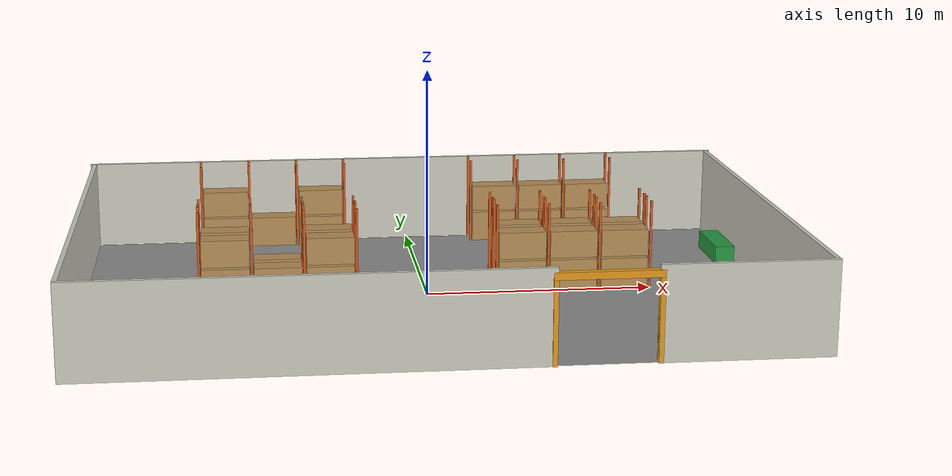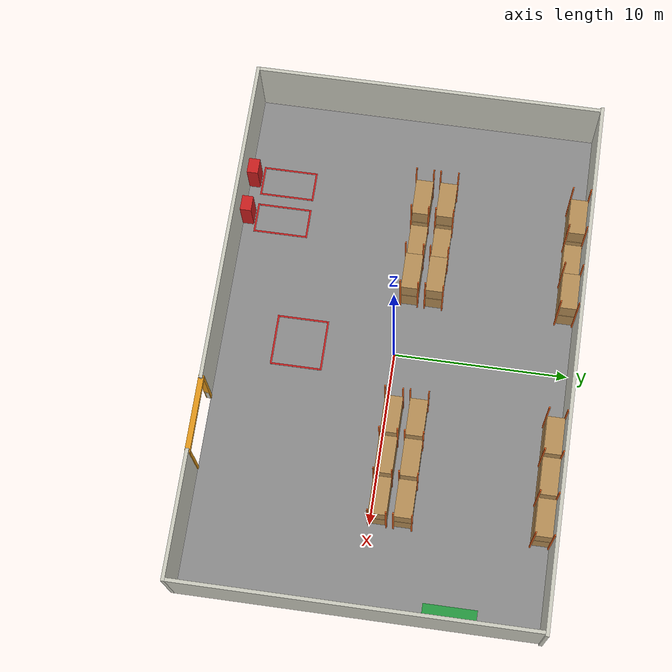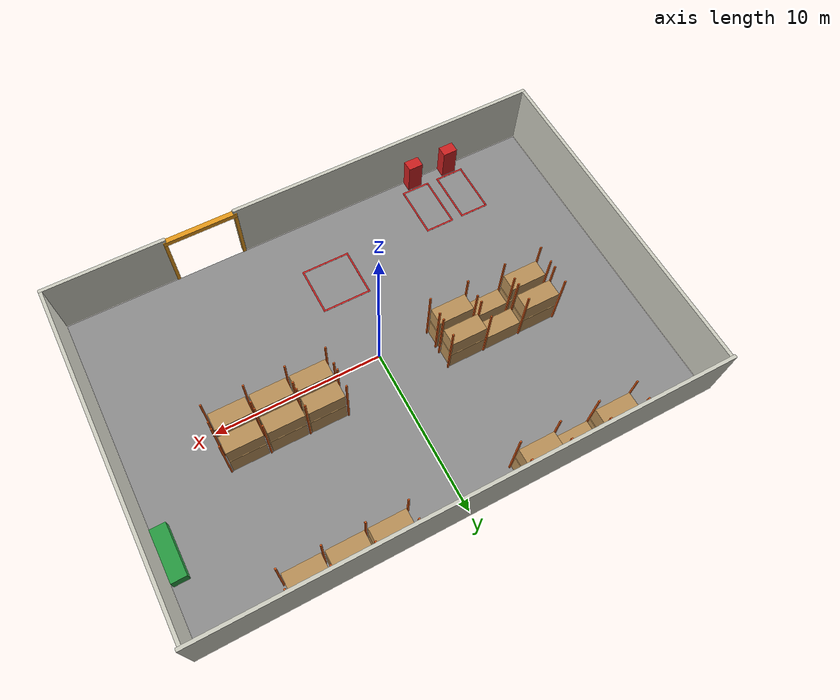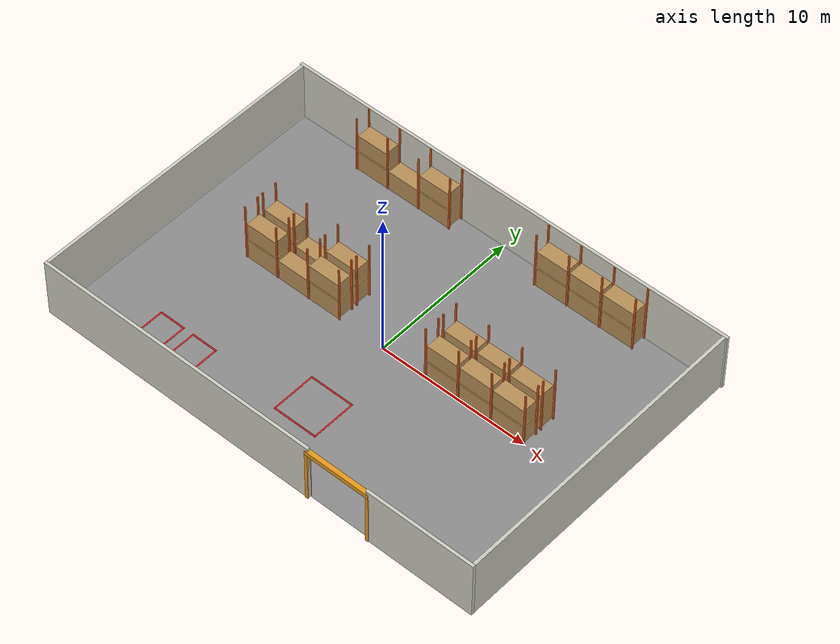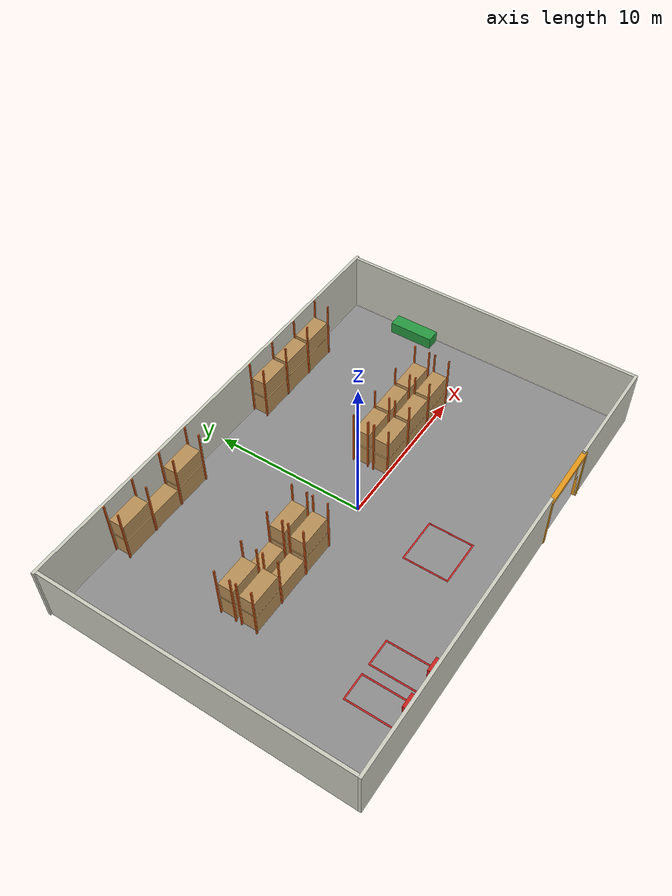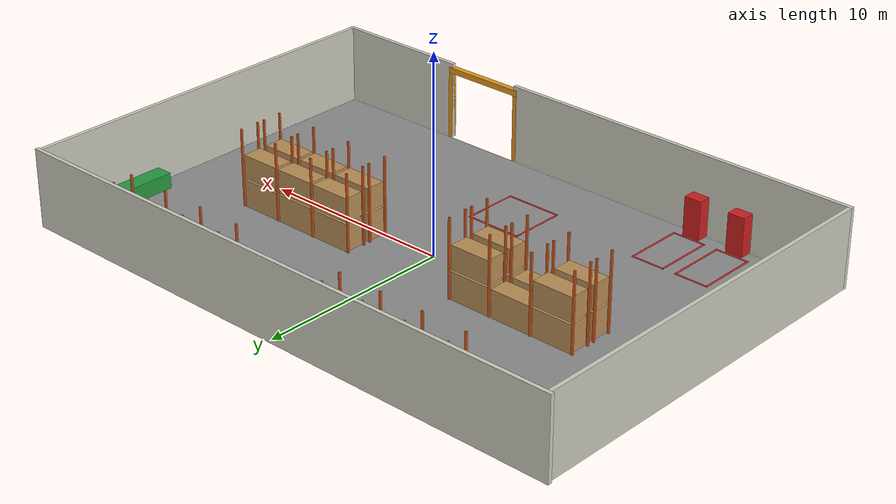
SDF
<?xml version="1.0" ?>
<sdf version="1.8">
  <world name="warehouse">

    <!-- The arena's 2 ms fixed step at 500 Hz, so joint rates measured on
         the M4 arena stay comparable here. -->
    <physics type="ode">
      <max_step_size>0.002</max_step_size>
      <real_time_factor>1.0</real_time_factor>
      <real_time_update_rate>500</real_time_update_rate>
    </physics>

    <plugin name="gz::sim::systems::Physics" filename="libgz-sim-physics-system.so"/>
    <plugin name="gz::sim::systems::UserCommands" filename="libgz-sim-user-commands-system.so"/>
    <plugin name="gz::sim::systems::SceneBroadcaster" filename="libgz-sim-scene-broadcaster-system.so"/>

    <!-- Required by the vehicle's three gpu_lidar sensors. Without this no
         scan topic is ever advertised and the failure is silent. -->
    <plugin name="gz::sim::systems::Sensors" filename="libgz-sim-sensors-system.so">
      <render_engine>ogre2</render_engine>
    </plugin>

    <!-- ======================= GUI CONFIGURATION ====================== -->
    <gui fullscreen="0">

      <plugin filename="MinimalScene" name="3D View">
        <gz-gui>
          <title>3D View</title>
          <property type="bool" key="showTitleBar">false</property>
          <property type="string" key="state">docked</property>
        </gz-gui>
        <engine>ogre2</engine>
        <scene>scene</scene>
        <ambient_light>1.0 1.0 1.0</ambient_light>
        <background_color>0.7 0.7 0.7</background_color>
        <!-- Looking north east from over the south west corner, so the
             dock apron, both charging bays and the west end of the rack
             block are in frame with no camera move. -->
        <camera_pose>-19.0 -16.0 12.0 0 0.52 0.72</camera_pose>
      </plugin>

      <plugin filename="GzSceneManager" name="Scene Manager">
        <gz-gui>
          <property key="resizable" type="bool">false</property>
          <property key="width" type="double">5</property>
          <property key="height" type="double">5</property>
          <property key="state" type="string">floating</property>
          <property key="showTitleBar" type="bool">false</property>
        </gz-gui>
      </plugin>

      <plugin filename="InteractiveViewControl" name="Interactive view control">
        <gz-gui>
          <property key="resizable" type="bool">false</property>
          <property key="width" type="double">5</property>
          <property key="height" type="double">5</property>
          <property key="state" type="string">floating</property>
          <property key="showTitleBar" type="bool">false</property>
        </gz-gui>
      </plugin>

      <plugin filename="CameraTracking" name="Camera Tracking">
        <gz-gui>
          <property key="resizable" type="bool">false</property>
          <property key="width" type="double">5</property>
          <property key="height" type="double">5</property>
          <property key="state" type="string">floating</property>
          <property key="showTitleBar" type="bool">false</property>
        </gz-gui>
      </plugin>

      <plugin filename="EntityContextMenuPlugin" name="Entity context menu">
        <gz-gui>
          <property key="state" type="string">floating</property>
          <property key="width" type="double">5</property>
          <property key="height" type="double">5</property>
          <property key="showTitleBar" type="bool">false</property>
        </gz-gui>
      </plugin>

      <plugin filename="WorldControl" name="World control">
        <gz-gui>
          <title>World control</title>
          <property type="bool" key="showTitleBar">false</property>
          <property type="bool" key="resizable">false</property>
          <property type="double" key="height">72</property>
          <property type="double" key="z">1</property>
          <property type="string" key="state">floating</property>
          <anchors target="3D View">
            <line own="left" target="left"/>
            <line own="bottom" target="bottom"/>
          </anchors>
        </gz-gui>
        <play_pause>true</play_pause>
        <step>true</step>
        <start_paused>false</start_paused>
        <use_event>true</use_event>
      </plugin>

      <!-- The real time factor readout, on screen for any recording. It is
           NOT a measurement instrument: the value it shows is gz's smoothed
           instantaneous factor. -->
      <plugin filename="WorldStats" name="World stats">
        <gz-gui>
          <title>World stats</title>
          <property type="bool" key="showTitleBar">false</property>
          <property type="bool" key="resizable">false</property>
          <property type="double" key="height">110</property>
          <property type="double" key="width">290</property>
          <property type="double" key="z">1</property>
          <property type="string" key="state">floating</property>
          <anchors target="3D View">
            <line own="right" target="right"/>
            <line own="bottom" target="bottom"/>
          </anchors>
        </gz-gui>
        <sim_time>true</sim_time>
        <real_time>true</real_time>
        <real_time_factor>true</real_time_factor>
        <iterations>true</iterations>
      </plugin>

      <!-- The beams. Docked rather than floating so the topic and display
           type combo boxes are visible without hunting: which scanner is on
           screen is not guessable from the picture. -->
      <plugin filename="VisualizeLidar" name="Visualize Lidar">
        <gz-gui>
          <title>Visualize lidar</title>
          <property type="string" key="state">docked</property>
        </gz-gui>
      </plugin>

      <plugin filename="Screenshot" name="Screenshot">
        <gz-gui>
          <property type="bool" key="showTitleBar">false</property>
          <property type="string" key="state">floating</property>
          <property type="double" key="width">100</property>
          <property type="double" key="height">50</property>
        </gz-gui>
      </plugin>

    </gui>

    <scene>
      <ambient>1 1 1 1</ambient>
      <background>0.7 0.7 0.7 1</background>
      <shadows>false</shadows>
      <grid>false</grid>
    </scene>

    <light name="sun" type="directional">
      <cast_shadows>false</cast_shadows>
      <pose>0 0 12 0 0 0</pose>
      <diffuse>1.0 1.0 1.0 1</diffuse>
      <specular>0.2 0.2 0.2 1</specular>
      <direction>-0.3 0.3 -1.0</direction>
    </light>

    <gravity>0 0 -9.8</gravity>

    <!-- ============================ Floor ============================ -->
    <!-- Plain concrete, mu 1.0 as in the arena: the tricycle has a single
         driven wheel and a slippery floor turns traction figures into tyre
         slip figures. -->
    <model name="Floor">
      <static>true</static>
      <link name="link">
        <collision name="collision">
          <geometry>
            <plane><normal>0 0 1</normal><size>30 20</size></plane>
          </geometry>
          <surface>
            <friction><ode><mu>1.0</mu><mu2>1.0</mu2></ode></friction>
          </surface>
        </collision>
        <visual name="visual">
          <geometry>
            <plane><normal>0 0 1</normal><size>30 20</size></plane>
          </geometry>
          <material>
            <ambient>0.55 0.55 0.55 1</ambient>
            <diffuse>0.55 0.55 0.55 1</diffuse>
          </material>
        </visual>
      </link>
    </model>

    <!-- ======================= Perimeter walls ======================= -->
    <!-- 0.20 thick, 4.00 high, inner faces at x = +-15.00 and
         y = +-10.00. The south wall is in two segments leaving the
         4.00 m dock door opening at x in [4.00, 8.00]. -->
    <model name="WallNorth">
      <static>true</static>
      <link name="link">
        <collision name="wallnorth_collision">
          <pose>0.000 10.100 2.000 0 0 0</pose>
          <geometry><box><size>30.600 0.200 4.000</size></box></geometry>
        </collision>
        <visual name="wallnorth_visual">
          <pose>0.000 10.100 2.000 0 0 0</pose>
          <geometry><box><size>30.600 0.200 4.000</size></box></geometry>
          <material><ambient>0.80 0.80 0.75 1</ambient><diffuse>0.80 0.80 0.75 1</diffuse></material>
        </visual>
      </link>
    </model>

    <model name="WallSouthWest">
      <static>true</static>
      <link name="link">
        <collision name="wallsouthwest_collision">
          <pose>-5.600 -10.100 2.000 0 0 0</pose>
          <geometry><box><size>19.200 0.200 4.000</size></box></geometry>
        </collision>
        <visual name="wallsouthwest_visual">
          <pose>-5.600 -10.100 2.000 0 0 0</pose>
          <geometry><box><size>19.200 0.200 4.000</size></box></geometry>
          <material><ambient>0.80 0.80 0.75 1</ambient><diffuse>0.80 0.80 0.75 1</diffuse></material>
        </visual>
      </link>
    </model>

    <model name="WallSouthEast">
      <static>true</static>
      <link name="link">
        <collision name="wallsoutheast_collision">
          <pose>11.600 -10.100 2.000 0 0 0</pose>
          <geometry><box><size>7.200 0.200 4.000</size></box></geometry>
        </collision>
        <visual name="wallsoutheast_visual">
          <pose>11.600 -10.100 2.000 0 0 0</pose>
          <geometry><box><size>7.200 0.200 4.000</size></box></geometry>
          <material><ambient>0.80 0.80 0.75 1</ambient><diffuse>0.80 0.80 0.75 1</diffuse></material>
        </visual>
      </link>
    </model>

    <model name="WallEast">
      <static>true</static>
      <link name="link">
        <collision name="walleast_collision">
          <pose>15.100 0.000 2.000 0 0 0</pose>
          <geometry><box><size>0.200 20.000 4.000</size></box></geometry>
        </collision>
        <visual name="walleast_visual">
          <pose>15.100 0.000 2.000 0 0 0</pose>
          <geometry><box><size>0.200 20.000 4.000</size></box></geometry>
          <material><ambient>0.80 0.80 0.75 1</ambient><diffuse>0.80 0.80 0.75 1</diffuse></material>
        </visual>
      </link>
    </model>

    <model name="WallWest">
      <static>true</static>
      <link name="link">
        <collision name="wallwest_collision">
          <pose>-15.100 0.000 2.000 0 0 0</pose>
          <geometry><box><size>0.200 20.000 4.000</size></box></geometry>
        </collision>
        <visual name="wallwest_visual">
          <pose>-15.100 0.000 2.000 0 0 0</pose>
          <geometry><box><size>0.200 20.000 4.000</size></box></geometry>
          <material><ambient>0.80 0.80 0.75 1</ambient><diffuse>0.80 0.80 0.75 1</diffuse></material>
        </visual>
      </link>
    </model>

    <!-- ========================= Dock door frame ====================== -->
    <model name="DoorGap">
      <static>true</static>
      <pose>6.00 -10.10 0 0 0 0</pose>
      <link name="link">
        <collision name="post_west_collision">
          <pose>-2.100 0.000 1.750 0 0 0</pose>
          <geometry><box><size>0.200 0.300 3.500</size></box></geometry>
        </collision>
        <visual name="post_west_visual">
          <pose>-2.100 0.000 1.750 0 0 0</pose>
          <geometry><box><size>0.200 0.300 3.500</size></box></geometry>
          <material><ambient>0.90 0.60 0.10 1</ambient><diffuse>0.90 0.60 0.10 1</diffuse></material>
        </visual>
        <collision name="post_east_collision">
          <pose>2.100 0.000 1.750 0 0 0</pose>
          <geometry><box><size>0.200 0.300 3.500</size></box></geometry>
        </collision>
        <visual name="post_east_visual">
          <pose>2.100 0.000 1.750 0 0 0</pose>
          <geometry><box><size>0.200 0.300 3.500</size></box></geometry>
          <material><ambient>0.90 0.60 0.10 1</ambient><diffuse>0.90 0.60 0.10 1</diffuse></material>
        </visual>
        <collision name="lintel_collision">
          <pose>0.000 0.000 3.650 0 0 0</pose>
          <geometry><box><size>4.400 0.300 0.300</size></box></geometry>
        </collision>
        <visual name="lintel_visual">
          <pose>0.000 0.000 3.650 0 0 0</pose>
          <geometry><box><size>4.400 0.300 0.300</size></box></geometry>
          <material><ambient>0.90 0.60 0.10 1</ambient><diffuse>0.90 0.60 0.10 1</diffuse></material>
        </visual>
      </link>
    </model>

    <!-- ============================ Racking =========================== -->

    <model name="RackRowA_West">
      <static>true</static>
      <link name="link">
        <!-- sub row A, front face y = +8.90, rear face y = +10.00 -->
        <collision name="a_frame0_front_collision">
          <pose>-10.000 8.940 2.000 0 0 0</pose>
          <geometry><box><size>0.100 0.080 4.000</size></box></geometry>
        </collision>
        <visual name="a_frame0_front_visual">
          <pose>-10.000 8.940 2.000 0 0 0</pose>
          <geometry><box><size>0.100 0.080 4.000</size></box></geometry>
          <material><ambient>0.85 0.35 0.10 1</ambient><diffuse>0.85 0.35 0.10 1</diffuse></material>
        </visual>
        <collision name="a_frame0_rear_collision">
          <pose>-10.000 9.960 2.000 0 0 0</pose>
          <geometry><box><size>0.100 0.080 4.000</size></box></geometry>
        </collision>
        <visual name="a_frame0_rear_visual">
          <pose>-10.000 9.960 2.000 0 0 0</pose>
          <geometry><box><size>0.100 0.080 4.000</size></box></geometry>
          <material><ambient>0.85 0.35 0.10 1</ambient><diffuse>0.85 0.35 0.10 1</diffuse></material>
        </visual>
        <collision name="a_frame1_front_collision">
          <pose>-7.700 8.940 2.000 0 0 0</pose>
          <geometry><box><size>0.100 0.080 4.000</size></box></geometry>
        </collision>
        <visual name="a_frame1_front_visual">
          <pose>-7.700 8.940 2.000 0 0 0</pose>
          <geometry><box><size>0.100 0.080 4.000</size></box></geometry>
          <material><ambient>0.85 0.35 0.10 1</ambient><diffuse>0.85 0.35 0.10 1</diffuse></material>
        </visual>
        <collision name="a_frame1_rear_collision">
          <pose>-7.700 9.960 2.000 0 0 0</pose>
          <geometry><box><size>0.100 0.080 4.000</size></box></geometry>
        </collision>
        <visual name="a_frame1_rear_visual">
          <pose>-7.700 9.960 2.000 0 0 0</pose>
          <geometry><box><size>0.100 0.080 4.000</size></box></geometry>
          <material><ambient>0.85 0.35 0.10 1</ambient><diffuse>0.85 0.35 0.10 1</diffuse></material>
        </visual>
        <collision name="a_frame2_front_collision">
          <pose>-5.400 8.940 2.000 0 0 0</pose>
          <geometry><box><size>0.100 0.080 4.000</size></box></geometry>
        </collision>
        <visual name="a_frame2_front_visual">
          <pose>-5.400 8.940 2.000 0 0 0</pose>
          <geometry><box><size>0.100 0.080 4.000</size></box></geometry>
          <material><ambient>0.85 0.35 0.10 1</ambient><diffuse>0.85 0.35 0.10 1</diffuse></material>
        </visual>
        <collision name="a_frame2_rear_collision">
          <pose>-5.400 9.960 2.000 0 0 0</pose>
          <geometry><box><size>0.100 0.080 4.000</size></box></geometry>
        </collision>
        <visual name="a_frame2_rear_visual">
          <pose>-5.400 9.960 2.000 0 0 0</pose>
          <geometry><box><size>0.100 0.080 4.000</size></box></geometry>
          <material><ambient>0.85 0.35 0.10 1</ambient><diffuse>0.85 0.35 0.10 1</diffuse></material>
        </visual>
        <collision name="a_frame3_front_collision">
          <pose>-3.100 8.940 2.000 0 0 0</pose>
          <geometry><box><size>0.100 0.080 4.000</size></box></geometry>
        </collision>
        <visual name="a_frame3_front_visual">
          <pose>-3.100 8.940 2.000 0 0 0</pose>
          <geometry><box><size>0.100 0.080 4.000</size></box></geometry>
          <material><ambient>0.85 0.35 0.10 1</ambient><diffuse>0.85 0.35 0.10 1</diffuse></material>
        </visual>
        <collision name="a_frame3_rear_collision">
          <pose>-3.100 9.960 2.000 0 0 0</pose>
          <geometry><box><size>0.100 0.080 4.000</size></box></geometry>
        </collision>
        <visual name="a_frame3_rear_visual">
          <pose>-3.100 9.960 2.000 0 0 0</pose>
          <geometry><box><size>0.100 0.080 4.000</size></box></geometry>
          <material><ambient>0.85 0.35 0.10 1</ambient><diffuse>0.85 0.35 0.10 1</diffuse></material>
        </visual>
        <collision name="a_bay0_level1_collision">
          <pose>-8.850 9.450 0.700 0 0 0</pose>
          <geometry><box><size>2.100 1.000 1.400</size></box></geometry>
        </collision>
        <visual name="a_bay0_level1_visual">
          <pose>-8.850 9.450 0.700 0 0 0</pose>
          <geometry><box><size>2.100 1.000 1.400</size></box></geometry>
          <material><ambient>0.72 0.56 0.34 1</ambient><diffuse>0.72 0.56 0.34 1</diffuse></material>
        </visual>
        <collision name="a_bay0_level2_collision">
          <pose>-8.850 9.450 2.100 0 0 0</pose>
          <geometry><box><size>2.100 1.000 1.200</size></box></geometry>
        </collision>
        <visual name="a_bay0_level2_visual">
          <pose>-8.850 9.450 2.100 0 0 0</pose>
          <geometry><box><size>2.100 1.000 1.200</size></box></geometry>
          <material><ambient>0.72 0.56 0.34 1</ambient><diffuse>0.72 0.56 0.34 1</diffuse></material>
        </visual>
        <collision name="a_bay1_level1_collision">
          <pose>-6.550 9.450 0.700 0 0 0</pose>
          <geometry><box><size>2.100 1.000 1.400</size></box></geometry>
        </collision>
        <visual name="a_bay1_level1_visual">
          <pose>-6.550 9.450 0.700 0 0 0</pose>
          <geometry><box><size>2.100 1.000 1.400</size></box></geometry>
          <material><ambient>0.72 0.56 0.34 1</ambient><diffuse>0.72 0.56 0.34 1</diffuse></material>
        </visual>
        <collision name="a_bay2_level1_collision">
          <pose>-4.250 9.450 0.700 0 0 0</pose>
          <geometry><box><size>2.100 1.000 1.400</size></box></geometry>
        </collision>
        <visual name="a_bay2_level1_visual">
          <pose>-4.250 9.450 0.700 0 0 0</pose>
          <geometry><box><size>2.100 1.000 1.400</size></box></geometry>
          <material><ambient>0.72 0.56 0.34 1</ambient><diffuse>0.72 0.56 0.34 1</diffuse></material>
        </visual>
        <collision name="a_bay2_level2_collision">
          <pose>-4.250 9.450 2.100 0 0 0</pose>
          <geometry><box><size>2.100 1.000 1.200</size></box></geometry>
        </collision>
        <visual name="a_bay2_level2_visual">
          <pose>-4.250 9.450 2.100 0 0 0</pose>
          <geometry><box><size>2.100 1.000 1.200</size></box></geometry>
          <material><ambient>0.72 0.56 0.34 1</ambient><diffuse>0.72 0.56 0.34 1</diffuse></material>
        </visual>
      </link>
    </model>

    <model name="RackRowA_East">
      <static>true</static>
      <link name="link">
        <!-- sub row A, front face y = +8.90, rear face y = +10.00 -->
        <collision name="a_frame0_front_collision">
          <pose>3.100 8.940 2.000 0 0 0</pose>
          <geometry><box><size>0.100 0.080 4.000</size></box></geometry>
        </collision>
        <visual name="a_frame0_front_visual">
          <pose>3.100 8.940 2.000 0 0 0</pose>
          <geometry><box><size>0.100 0.080 4.000</size></box></geometry>
          <material><ambient>0.85 0.35 0.10 1</ambient><diffuse>0.85 0.35 0.10 1</diffuse></material>
        </visual>
        <collision name="a_frame0_rear_collision">
          <pose>3.100 9.960 2.000 0 0 0</pose>
          <geometry><box><size>0.100 0.080 4.000</size></box></geometry>
        </collision>
        <visual name="a_frame0_rear_visual">
          <pose>3.100 9.960 2.000 0 0 0</pose>
          <geometry><box><size>0.100 0.080 4.000</size></box></geometry>
          <material><ambient>0.85 0.35 0.10 1</ambient><diffuse>0.85 0.35 0.10 1</diffuse></material>
        </visual>
        <collision name="a_frame1_front_collision">
          <pose>5.400 8.940 2.000 0 0 0</pose>
          <geometry><box><size>0.100 0.080 4.000</size></box></geometry>
        </collision>
        <visual name="a_frame1_front_visual">
          <pose>5.400 8.940 2.000 0 0 0</pose>
          <geometry><box><size>0.100 0.080 4.000</size></box></geometry>
          <material><ambient>0.85 0.35 0.10 1</ambient><diffuse>0.85 0.35 0.10 1</diffuse></material>
        </visual>
        <collision name="a_frame1_rear_collision">
          <pose>5.400 9.960 2.000 0 0 0</pose>
          <geometry><box><size>0.100 0.080 4.000</size></box></geometry>
        </collision>
        <visual name="a_frame1_rear_visual">
          <pose>5.400 9.960 2.000 0 0 0</pose>
          <geometry><box><size>0.100 0.080 4.000</size></box></geometry>
          <material><ambient>0.85 0.35 0.10 1</ambient><diffuse>0.85 0.35 0.10 1</diffuse></material>
        </visual>
        <collision name="a_frame2_front_collision">
          <pose>7.700 8.940 2.000 0 0 0</pose>
          <geometry><box><size>0.100 0.080 4.000</size></box></geometry>
        </collision>
        <visual name="a_frame2_front_visual">
          <pose>7.700 8.940 2.000 0 0 0</pose>
          <geometry><box><size>0.100 0.080 4.000</size></box></geometry>
          <material><ambient>0.85 0.35 0.10 1</ambient><diffuse>0.85 0.35 0.10 1</diffuse></material>
        </visual>
        <collision name="a_frame2_rear_collision">
          <pose>7.700 9.960 2.000 0 0 0</pose>
          <geometry><box><size>0.100 0.080 4.000</size></box></geometry>
        </collision>
        <visual name="a_frame2_rear_visual">
          <pose>7.700 9.960 2.000 0 0 0</pose>
          <geometry><box><size>0.100 0.080 4.000</size></box></geometry>
          <material><ambient>0.85 0.35 0.10 1</ambient><diffuse>0.85 0.35 0.10 1</diffuse></material>
        </visual>
        <collision name="a_frame3_front_collision">
          <pose>10.000 8.940 2.000 0 0 0</pose>
          <geometry><box><size>0.100 0.080 4.000</size></box></geometry>
        </collision>
        <visual name="a_frame3_front_visual">
          <pose>10.000 8.940 2.000 0 0 0</pose>
          <geometry><box><size>0.100 0.080 4.000</size></box></geometry>
          <material><ambient>0.85 0.35 0.10 1</ambient><diffuse>0.85 0.35 0.10 1</diffuse></material>
        </visual>
        <collision name="a_frame3_rear_collision">
          <pose>10.000 9.960 2.000 0 0 0</pose>
          <geometry><box><size>0.100 0.080 4.000</size></box></geometry>
        </collision>
        <visual name="a_frame3_rear_visual">
          <pose>10.000 9.960 2.000 0 0 0</pose>
          <geometry><box><size>0.100 0.080 4.000</size></box></geometry>
          <material><ambient>0.85 0.35 0.10 1</ambient><diffuse>0.85 0.35 0.10 1</diffuse></material>
        </visual>
        <collision name="a_bay0_level1_collision">
          <pose>4.250 9.450 0.700 0 0 0</pose>
          <geometry><box><size>2.100 1.000 1.400</size></box></geometry>
        </collision>
        <visual name="a_bay0_level1_visual">
          <pose>4.250 9.450 0.700 0 0 0</pose>
          <geometry><box><size>2.100 1.000 1.400</size></box></geometry>
          <material><ambient>0.72 0.56 0.34 1</ambient><diffuse>0.72 0.56 0.34 1</diffuse></material>
        </visual>
        <collision name="a_bay0_level2_collision">
          <pose>4.250 9.450 2.100 0 0 0</pose>
          <geometry><box><size>2.100 1.000 1.200</size></box></geometry>
        </collision>
        <visual name="a_bay0_level2_visual">
          <pose>4.250 9.450 2.100 0 0 0</pose>
          <geometry><box><size>2.100 1.000 1.200</size></box></geometry>
          <material><ambient>0.72 0.56 0.34 1</ambient><diffuse>0.72 0.56 0.34 1</diffuse></material>
        </visual>
        <collision name="a_bay1_level1_collision">
          <pose>6.550 9.450 0.700 0 0 0</pose>
          <geometry><box><size>2.100 1.000 1.400</size></box></geometry>
        </collision>
        <visual name="a_bay1_level1_visual">
          <pose>6.550 9.450 0.700 0 0 0</pose>
          <geometry><box><size>2.100 1.000 1.400</size></box></geometry>
          <material><ambient>0.72 0.56 0.34 1</ambient><diffuse>0.72 0.56 0.34 1</diffuse></material>
        </visual>
        <collision name="a_bay1_level2_collision">
          <pose>6.550 9.450 2.100 0 0 0</pose>
          <geometry><box><size>2.100 1.000 1.200</size></box></geometry>
        </collision>
        <visual name="a_bay1_level2_visual">
          <pose>6.550 9.450 2.100 0 0 0</pose>
          <geometry><box><size>2.100 1.000 1.200</size></box></geometry>
          <material><ambient>0.72 0.56 0.34 1</ambient><diffuse>0.72 0.56 0.34 1</diffuse></material>
        </visual>
        <collision name="a_bay2_level1_collision">
          <pose>8.850 9.450 0.700 0 0 0</pose>
          <geometry><box><size>2.100 1.000 1.400</size></box></geometry>
        </collision>
        <visual name="a_bay2_level1_visual">
          <pose>8.850 9.450 0.700 0 0 0</pose>
          <geometry><box><size>2.100 1.000 1.400</size></box></geometry>
          <material><ambient>0.72 0.56 0.34 1</ambient><diffuse>0.72 0.56 0.34 1</diffuse></material>
        </visual>
        <collision name="a_bay2_level2_collision">
          <pose>8.850 9.450 2.100 0 0 0</pose>
          <geometry><box><size>2.100 1.000 1.200</size></box></geometry>
        </collision>
        <visual name="a_bay2_level2_visual">
          <pose>8.850 9.450 2.100 0 0 0</pose>
          <geometry><box><size>2.100 1.000 1.200</size></box></geometry>
          <material><ambient>0.72 0.56 0.34 1</ambient><diffuse>0.72 0.56 0.34 1</diffuse></material>
        </visual>
      </link>
    </model>

    <model name="RackRowB_West">
      <static>true</static>
      <link name="link">
        <!-- sub rows Bn/Bs: faces y = +2.40/+1.30 and y = +1.00/-0.10 -->
        <collision name="bn_frame0_front_collision">
          <pose>-10.000 2.360 2.000 0 0 0</pose>
          <geometry><box><size>0.100 0.080 4.000</size></box></geometry>
        </collision>
        <visual name="bn_frame0_front_visual">
          <pose>-10.000 2.360 2.000 0 0 0</pose>
          <geometry><box><size>0.100 0.080 4.000</size></box></geometry>
          <material><ambient>0.85 0.35 0.10 1</ambient><diffuse>0.85 0.35 0.10 1</diffuse></material>
        </visual>
        <collision name="bn_frame0_rear_collision">
          <pose>-10.000 1.340 2.000 0 0 0</pose>
          <geometry><box><size>0.100 0.080 4.000</size></box></geometry>
        </collision>
        <visual name="bn_frame0_rear_visual">
          <pose>-10.000 1.340 2.000 0 0 0</pose>
          <geometry><box><size>0.100 0.080 4.000</size></box></geometry>
          <material><ambient>0.85 0.35 0.10 1</ambient><diffuse>0.85 0.35 0.10 1</diffuse></material>
        </visual>
        <collision name="bn_frame1_front_collision">
          <pose>-7.700 2.360 2.000 0 0 0</pose>
          <geometry><box><size>0.100 0.080 4.000</size></box></geometry>
        </collision>
        <visual name="bn_frame1_front_visual">
          <pose>-7.700 2.360 2.000 0 0 0</pose>
          <geometry><box><size>0.100 0.080 4.000</size></box></geometry>
          <material><ambient>0.85 0.35 0.10 1</ambient><diffuse>0.85 0.35 0.10 1</diffuse></material>
        </visual>
        <collision name="bn_frame1_rear_collision">
          <pose>-7.700 1.340 2.000 0 0 0</pose>
          <geometry><box><size>0.100 0.080 4.000</size></box></geometry>
        </collision>
        <visual name="bn_frame1_rear_visual">
          <pose>-7.700 1.340 2.000 0 0 0</pose>
          <geometry><box><size>0.100 0.080 4.000</size></box></geometry>
          <material><ambient>0.85 0.35 0.10 1</ambient><diffuse>0.85 0.35 0.10 1</diffuse></material>
        </visual>
        <collision name="bn_frame2_front_collision">
          <pose>-5.400 2.360 2.000 0 0 0</pose>
          <geometry><box><size>0.100 0.080 4.000</size></box></geometry>
        </collision>
        <visual name="bn_frame2_front_visual">
          <pose>-5.400 2.360 2.000 0 0 0</pose>
          <geometry><box><size>0.100 0.080 4.000</size></box></geometry>
          <material><ambient>0.85 0.35 0.10 1</ambient><diffuse>0.85 0.35 0.10 1</diffuse></material>
        </visual>
        <collision name="bn_frame2_rear_collision">
          <pose>-5.400 1.340 2.000 0 0 0</pose>
          <geometry><box><size>0.100 0.080 4.000</size></box></geometry>
        </collision>
        <visual name="bn_frame2_rear_visual">
          <pose>-5.400 1.340 2.000 0 0 0</pose>
          <geometry><box><size>0.100 0.080 4.000</size></box></geometry>
          <material><ambient>0.85 0.35 0.10 1</ambient><diffuse>0.85 0.35 0.10 1</diffuse></material>
        </visual>
        <collision name="bn_frame3_front_collision">
          <pose>-3.100 2.360 2.000 0 0 0</pose>
          <geometry><box><size>0.100 0.080 4.000</size></box></geometry>
        </collision>
        <visual name="bn_frame3_front_visual">
          <pose>-3.100 2.360 2.000 0 0 0</pose>
          <geometry><box><size>0.100 0.080 4.000</size></box></geometry>
          <material><ambient>0.85 0.35 0.10 1</ambient><diffuse>0.85 0.35 0.10 1</diffuse></material>
        </visual>
        <collision name="bn_frame3_rear_collision">
          <pose>-3.100 1.340 2.000 0 0 0</pose>
          <geometry><box><size>0.100 0.080 4.000</size></box></geometry>
        </collision>
        <visual name="bn_frame3_rear_visual">
          <pose>-3.100 1.340 2.000 0 0 0</pose>
          <geometry><box><size>0.100 0.080 4.000</size></box></geometry>
          <material><ambient>0.85 0.35 0.10 1</ambient><diffuse>0.85 0.35 0.10 1</diffuse></material>
        </visual>
        <collision name="bn_bay0_level1_collision">
          <pose>-8.850 1.850 0.700 0 0 0</pose>
          <geometry><box><size>2.100 1.000 1.400</size></box></geometry>
        </collision>
        <visual name="bn_bay0_level1_visual">
          <pose>-8.850 1.850 0.700 0 0 0</pose>
          <geometry><box><size>2.100 1.000 1.400</size></box></geometry>
          <material><ambient>0.72 0.56 0.34 1</ambient><diffuse>0.72 0.56 0.34 1</diffuse></material>
        </visual>
        <collision name="bn_bay0_level2_collision">
          <pose>-8.850 1.850 2.100 0 0 0</pose>
          <geometry><box><size>2.100 1.000 1.200</size></box></geometry>
        </collision>
        <visual name="bn_bay0_level2_visual">
          <pose>-8.850 1.850 2.100 0 0 0</pose>
          <geometry><box><size>2.100 1.000 1.200</size></box></geometry>
          <material><ambient>0.72 0.56 0.34 1</ambient><diffuse>0.72 0.56 0.34 1</diffuse></material>
        </visual>
        <collision name="bn_bay1_level1_collision">
          <pose>-6.550 1.850 0.700 0 0 0</pose>
          <geometry><box><size>2.100 1.000 1.400</size></box></geometry>
        </collision>
        <visual name="bn_bay1_level1_visual">
          <pose>-6.550 1.850 0.700 0 0 0</pose>
          <geometry><box><size>2.100 1.000 1.400</size></box></geometry>
          <material><ambient>0.72 0.56 0.34 1</ambient><diffuse>0.72 0.56 0.34 1</diffuse></material>
        </visual>
        <collision name="bn_bay2_level1_collision">
          <pose>-4.250 1.850 0.700 0 0 0</pose>
          <geometry><box><size>2.100 1.000 1.400</size></box></geometry>
        </collision>
        <visual name="bn_bay2_level1_visual">
          <pose>-4.250 1.850 0.700 0 0 0</pose>
          <geometry><box><size>2.100 1.000 1.400</size></box></geometry>
          <material><ambient>0.72 0.56 0.34 1</ambient><diffuse>0.72 0.56 0.34 1</diffuse></material>
        </visual>
        <collision name="bn_bay2_level2_collision">
          <pose>-4.250 1.850 2.100 0 0 0</pose>
          <geometry><box><size>2.100 1.000 1.200</size></box></geometry>
        </collision>
        <visual name="bn_bay2_level2_visual">
          <pose>-4.250 1.850 2.100 0 0 0</pose>
          <geometry><box><size>2.100 1.000 1.200</size></box></geometry>
          <material><ambient>0.72 0.56 0.34 1</ambient><diffuse>0.72 0.56 0.34 1</diffuse></material>
        </visual>
        <collision name="bs_frame0_front_collision">
          <pose>-10.000 -0.060 2.000 0 0 0</pose>
          <geometry><box><size>0.100 0.080 4.000</size></box></geometry>
        </collision>
        <visual name="bs_frame0_front_visual">
          <pose>-10.000 -0.060 2.000 0 0 0</pose>
          <geometry><box><size>0.100 0.080 4.000</size></box></geometry>
          <material><ambient>0.85 0.35 0.10 1</ambient><diffuse>0.85 0.35 0.10 1</diffuse></material>
        </visual>
        <collision name="bs_frame0_rear_collision">
          <pose>-10.000 0.940 2.000 0 0 0</pose>
          <geometry><box><size>0.100 0.080 4.000</size></box></geometry>
        </collision>
        <visual name="bs_frame0_rear_visual">
          <pose>-10.000 0.940 2.000 0 0 0</pose>
          <geometry><box><size>0.100 0.080 4.000</size></box></geometry>
          <material><ambient>0.85 0.35 0.10 1</ambient><diffuse>0.85 0.35 0.10 1</diffuse></material>
        </visual>
        <collision name="bs_frame1_front_collision">
          <pose>-7.700 -0.060 2.000 0 0 0</pose>
          <geometry><box><size>0.100 0.080 4.000</size></box></geometry>
        </collision>
        <visual name="bs_frame1_front_visual">
          <pose>-7.700 -0.060 2.000 0 0 0</pose>
          <geometry><box><size>0.100 0.080 4.000</size></box></geometry>
          <material><ambient>0.85 0.35 0.10 1</ambient><diffuse>0.85 0.35 0.10 1</diffuse></material>
        </visual>
        <collision name="bs_frame1_rear_collision">
          <pose>-7.700 0.940 2.000 0 0 0</pose>
          <geometry><box><size>0.100 0.080 4.000</size></box></geometry>
        </collision>
        <visual name="bs_frame1_rear_visual">
          <pose>-7.700 0.940 2.000 0 0 0</pose>
          <geometry><box><size>0.100 0.080 4.000</size></box></geometry>
          <material><ambient>0.85 0.35 0.10 1</ambient><diffuse>0.85 0.35 0.10 1</diffuse></material>
        </visual>
        <collision name="bs_frame2_front_collision">
          <pose>-5.400 -0.060 2.000 0 0 0</pose>
          <geometry><box><size>0.100 0.080 4.000</size></box></geometry>
        </collision>
        <visual name="bs_frame2_front_visual">
          <pose>-5.400 -0.060 2.000 0 0 0</pose>
          <geometry><box><size>0.100 0.080 4.000</size></box></geometry>
          <material><ambient>0.85 0.35 0.10 1</ambient><diffuse>0.85 0.35 0.10 1</diffuse></material>
        </visual>
        <collision name="bs_frame2_rear_collision">
          <pose>-5.400 0.940 2.000 0 0 0</pose>
          <geometry><box><size>0.100 0.080 4.000</size></box></geometry>
        </collision>
        <visual name="bs_frame2_rear_visual">
          <pose>-5.400 0.940 2.000 0 0 0</pose>
          <geometry><box><size>0.100 0.080 4.000</size></box></geometry>
          <material><ambient>0.85 0.35 0.10 1</ambient><diffuse>0.85 0.35 0.10 1</diffuse></material>
        </visual>
        <collision name="bs_frame3_front_collision">
          <pose>-3.100 -0.060 2.000 0 0 0</pose>
          <geometry><box><size>0.100 0.080 4.000</size></box></geometry>
        </collision>
        <visual name="bs_frame3_front_visual">
          <pose>-3.100 -0.060 2.000 0 0 0</pose>
          <geometry><box><size>0.100 0.080 4.000</size></box></geometry>
          <material><ambient>0.85 0.35 0.10 1</ambient><diffuse>0.85 0.35 0.10 1</diffuse></material>
        </visual>
        <collision name="bs_frame3_rear_collision">
          <pose>-3.100 0.940 2.000 0 0 0</pose>
          <geometry><box><size>0.100 0.080 4.000</size></box></geometry>
        </collision>
        <visual name="bs_frame3_rear_visual">
          <pose>-3.100 0.940 2.000 0 0 0</pose>
          <geometry><box><size>0.100 0.080 4.000</size></box></geometry>
          <material><ambient>0.85 0.35 0.10 1</ambient><diffuse>0.85 0.35 0.10 1</diffuse></material>
        </visual>
        <collision name="bs_bay0_level1_collision">
          <pose>-8.850 0.450 0.700 0 0 0</pose>
          <geometry><box><size>2.100 1.000 1.400</size></box></geometry>
        </collision>
        <visual name="bs_bay0_level1_visual">
          <pose>-8.850 0.450 0.700 0 0 0</pose>
          <geometry><box><size>2.100 1.000 1.400</size></box></geometry>
          <material><ambient>0.72 0.56 0.34 1</ambient><diffuse>0.72 0.56 0.34 1</diffuse></material>
        </visual>
        <collision name="bs_bay0_level2_collision">
          <pose>-8.850 0.450 2.100 0 0 0</pose>
          <geometry><box><size>2.100 1.000 1.200</size></box></geometry>
        </collision>
        <visual name="bs_bay0_level2_visual">
          <pose>-8.850 0.450 2.100 0 0 0</pose>
          <geometry><box><size>2.100 1.000 1.200</size></box></geometry>
          <material><ambient>0.72 0.56 0.34 1</ambient><diffuse>0.72 0.56 0.34 1</diffuse></material>
        </visual>
        <collision name="bs_bay1_level1_collision">
          <pose>-6.550 0.450 0.700 0 0 0</pose>
          <geometry><box><size>2.100 1.000 1.400</size></box></geometry>
        </collision>
        <visual name="bs_bay1_level1_visual">
          <pose>-6.550 0.450 0.700 0 0 0</pose>
          <geometry><box><size>2.100 1.000 1.400</size></box></geometry>
          <material><ambient>0.72 0.56 0.34 1</ambient><diffuse>0.72 0.56 0.34 1</diffuse></material>
        </visual>
        <collision name="bs_bay2_level1_collision">
          <pose>-4.250 0.450 0.700 0 0 0</pose>
          <geometry><box><size>2.100 1.000 1.400</size></box></geometry>
        </collision>
        <visual name="bs_bay2_level1_visual">
          <pose>-4.250 0.450 0.700 0 0 0</pose>
          <geometry><box><size>2.100 1.000 1.400</size></box></geometry>
          <material><ambient>0.72 0.56 0.34 1</ambient><diffuse>0.72 0.56 0.34 1</diffuse></material>
        </visual>
        <collision name="bs_bay2_level2_collision">
          <pose>-4.250 0.450 2.100 0 0 0</pose>
          <geometry><box><size>2.100 1.000 1.200</size></box></geometry>
        </collision>
        <visual name="bs_bay2_level2_visual">
          <pose>-4.250 0.450 2.100 0 0 0</pose>
          <geometry><box><size>2.100 1.000 1.200</size></box></geometry>
          <material><ambient>0.72 0.56 0.34 1</ambient><diffuse>0.72 0.56 0.34 1</diffuse></material>
        </visual>
      </link>
    </model>

    <model name="RackRowB_East">
      <static>true</static>
      <link name="link">
        <!-- sub rows Bn/Bs: faces y = +2.40/+1.30 and y = +1.00/-0.10 -->
        <collision name="bn_frame0_front_collision">
          <pose>3.100 2.360 2.000 0 0 0</pose>
          <geometry><box><size>0.100 0.080 4.000</size></box></geometry>
        </collision>
        <visual name="bn_frame0_front_visual">
          <pose>3.100 2.360 2.000 0 0 0</pose>
          <geometry><box><size>0.100 0.080 4.000</size></box></geometry>
          <material><ambient>0.85 0.35 0.10 1</ambient><diffuse>0.85 0.35 0.10 1</diffuse></material>
        </visual>
        <collision name="bn_frame0_rear_collision">
          <pose>3.100 1.340 2.000 0 0 0</pose>
          <geometry><box><size>0.100 0.080 4.000</size></box></geometry>
        </collision>
        <visual name="bn_frame0_rear_visual">
          <pose>3.100 1.340 2.000 0 0 0</pose>
          <geometry><box><size>0.100 0.080 4.000</size></box></geometry>
          <material><ambient>0.85 0.35 0.10 1</ambient><diffuse>0.85 0.35 0.10 1</diffuse></material>
        </visual>
        <collision name="bn_frame1_front_collision">
          <pose>5.400 2.360 2.000 0 0 0</pose>
          <geometry><box><size>0.100 0.080 4.000</size></box></geometry>
        </collision>
        <visual name="bn_frame1_front_visual">
          <pose>5.400 2.360 2.000 0 0 0</pose>
          <geometry><box><size>0.100 0.080 4.000</size></box></geometry>
          <material><ambient>0.85 0.35 0.10 1</ambient><diffuse>0.85 0.35 0.10 1</diffuse></material>
        </visual>
        <collision name="bn_frame1_rear_collision">
          <pose>5.400 1.340 2.000 0 0 0</pose>
          <geometry><box><size>0.100 0.080 4.000</size></box></geometry>
        </collision>
        <visual name="bn_frame1_rear_visual">
          <pose>5.400 1.340 2.000 0 0 0</pose>
          <geometry><box><size>0.100 0.080 4.000</size></box></geometry>
          <material><ambient>0.85 0.35 0.10 1</ambient><diffuse>0.85 0.35 0.10 1</diffuse></material>
        </visual>
        <collision name="bn_frame2_front_collision">
          <pose>7.700 2.360 2.000 0 0 0</pose>
          <geometry><box><size>0.100 0.080 4.000</size></box></geometry>
        </collision>
        <visual name="bn_frame2_front_visual">
          <pose>7.700 2.360 2.000 0 0 0</pose>
          <geometry><box><size>0.100 0.080 4.000</size></box></geometry>
          <material><ambient>0.85 0.35 0.10 1</ambient><diffuse>0.85 0.35 0.10 1</diffuse></material>
        </visual>
        <collision name="bn_frame2_rear_collision">
          <pose>7.700 1.340 2.000 0 0 0</pose>
          <geometry><box><size>0.100 0.080 4.000</size></box></geometry>
        </collision>
        <visual name="bn_frame2_rear_visual">
          <pose>7.700 1.340 2.000 0 0 0</pose>
          <geometry><box><size>0.100 0.080 4.000</size></box></geometry>
          <material><ambient>0.85 0.35 0.10 1</ambient><diffuse>0.85 0.35 0.10 1</diffuse></material>
        </visual>
        <collision name="bn_frame3_front_collision">
          <pose>10.000 2.360 2.000 0 0 0</pose>
          <geometry><box><size>0.100 0.080 4.000</size></box></geometry>
        </collision>
        <visual name="bn_frame3_front_visual">
          <pose>10.000 2.360 2.000 0 0 0</pose>
          <geometry><box><size>0.100 0.080 4.000</size></box></geometry>
          <material><ambient>0.85 0.35 0.10 1</ambient><diffuse>0.85 0.35 0.10 1</diffuse></material>
        </visual>
        <collision name="bn_frame3_rear_collision">
          <pose>10.000 1.340 2.000 0 0 0</pose>
          <geometry><box><size>0.100 0.080 4.000</size></box></geometry>
        </collision>
        <visual name="bn_frame3_rear_visual">
          <pose>10.000 1.340 2.000 0 0 0</pose>
          <geometry><box><size>0.100 0.080 4.000</size></box></geometry>
          <material><ambient>0.85 0.35 0.10 1</ambient><diffuse>0.85 0.35 0.10 1</diffuse></material>
        </visual>
        <collision name="bn_bay0_level1_collision">
          <pose>4.250 1.850 0.700 0 0 0</pose>
          <geometry><box><size>2.100 1.000 1.400</size></box></geometry>
        </collision>
        <visual name="bn_bay0_level1_visual">
          <pose>4.250 1.850 0.700 0 0 0</pose>
          <geometry><box><size>2.100 1.000 1.400</size></box></geometry>
          <material><ambient>0.72 0.56 0.34 1</ambient><diffuse>0.72 0.56 0.34 1</diffuse></material>
        </visual>
        <collision name="bn_bay0_level2_collision">
          <pose>4.250 1.850 2.100 0 0 0</pose>
          <geometry><box><size>2.100 1.000 1.200</size></box></geometry>
        </collision>
        <visual name="bn_bay0_level2_visual">
          <pose>4.250 1.850 2.100 0 0 0</pose>
          <geometry><box><size>2.100 1.000 1.200</size></box></geometry>
          <material><ambient>0.72 0.56 0.34 1</ambient><diffuse>0.72 0.56 0.34 1</diffuse></material>
        </visual>
        <collision name="bn_bay1_level1_collision">
          <pose>6.550 1.850 0.700 0 0 0</pose>
          <geometry><box><size>2.100 1.000 1.400</size></box></geometry>
        </collision>
        <visual name="bn_bay1_level1_visual">
          <pose>6.550 1.850 0.700 0 0 0</pose>
          <geometry><box><size>2.100 1.000 1.400</size></box></geometry>
          <material><ambient>0.72 0.56 0.34 1</ambient><diffuse>0.72 0.56 0.34 1</diffuse></material>
        </visual>
        <collision name="bn_bay1_level2_collision">
          <pose>6.550 1.850 2.100 0 0 0</pose>
          <geometry><box><size>2.100 1.000 1.200</size></box></geometry>
        </collision>
        <visual name="bn_bay1_level2_visual">
          <pose>6.550 1.850 2.100 0 0 0</pose>
          <geometry><box><size>2.100 1.000 1.200</size></box></geometry>
          <material><ambient>0.72 0.56 0.34 1</ambient><diffuse>0.72 0.56 0.34 1</diffuse></material>
        </visual>
        <collision name="bn_bay2_level1_collision">
          <pose>8.850 1.850 0.700 0 0 0</pose>
          <geometry><box><size>2.100 1.000 1.400</size></box></geometry>
        </collision>
        <visual name="bn_bay2_level1_visual">
          <pose>8.850 1.850 0.700 0 0 0</pose>
          <geometry><box><size>2.100 1.000 1.400</size></box></geometry>
          <material><ambient>0.72 0.56 0.34 1</ambient><diffuse>0.72 0.56 0.34 1</diffuse></material>
        </visual>
        <collision name="bn_bay2_level2_collision">
          <pose>8.850 1.850 2.100 0 0 0</pose>
          <geometry><box><size>2.100 1.000 1.200</size></box></geometry>
        </collision>
        <visual name="bn_bay2_level2_visual">
          <pose>8.850 1.850 2.100 0 0 0</pose>
          <geometry><box><size>2.100 1.000 1.200</size></box></geometry>
          <material><ambient>0.72 0.56 0.34 1</ambient><diffuse>0.72 0.56 0.34 1</diffuse></material>
        </visual>
        <collision name="bs_frame0_front_collision">
          <pose>3.100 -0.060 2.000 0 0 0</pose>
          <geometry><box><size>0.100 0.080 4.000</size></box></geometry>
        </collision>
        <visual name="bs_frame0_front_visual">
          <pose>3.100 -0.060 2.000 0 0 0</pose>
          <geometry><box><size>0.100 0.080 4.000</size></box></geometry>
          <material><ambient>0.85 0.35 0.10 1</ambient><diffuse>0.85 0.35 0.10 1</diffuse></material>
        </visual>
        <collision name="bs_frame0_rear_collision">
          <pose>3.100 0.940 2.000 0 0 0</pose>
          <geometry><box><size>0.100 0.080 4.000</size></box></geometry>
        </collision>
        <visual name="bs_frame0_rear_visual">
          <pose>3.100 0.940 2.000 0 0 0</pose>
          <geometry><box><size>0.100 0.080 4.000</size></box></geometry>
          <material><ambient>0.85 0.35 0.10 1</ambient><diffuse>0.85 0.35 0.10 1</diffuse></material>
        </visual>
        <collision name="bs_frame1_front_collision">
          <pose>5.400 -0.060 2.000 0 0 0</pose>
          <geometry><box><size>0.100 0.080 4.000</size></box></geometry>
        </collision>
        <visual name="bs_frame1_front_visual">
          <pose>5.400 -0.060 2.000 0 0 0</pose>
          <geometry><box><size>0.100 0.080 4.000</size></box></geometry>
          <material><ambient>0.85 0.35 0.10 1</ambient><diffuse>0.85 0.35 0.10 1</diffuse></material>
        </visual>
        <collision name="bs_frame1_rear_collision">
          <pose>5.400 0.940 2.000 0 0 0</pose>
          <geometry><box><size>0.100 0.080 4.000</size></box></geometry>
        </collision>
        <visual name="bs_frame1_rear_visual">
          <pose>5.400 0.940 2.000 0 0 0</pose>
          <geometry><box><size>0.100 0.080 4.000</size></box></geometry>
          <material><ambient>0.85 0.35 0.10 1</ambient><diffuse>0.85 0.35 0.10 1</diffuse></material>
        </visual>
        <collision name="bs_frame2_front_collision">
          <pose>7.700 -0.060 2.000 0 0 0</pose>
          <geometry><box><size>0.100 0.080 4.000</size></box></geometry>
        </collision>
        <visual name="bs_frame2_front_visual">
          <pose>7.700 -0.060 2.000 0 0 0</pose>
          <geometry><box><size>0.100 0.080 4.000</size></box></geometry>
          <material><ambient>0.85 0.35 0.10 1</ambient><diffuse>0.85 0.35 0.10 1</diffuse></material>
        </visual>
        <collision name="bs_frame2_rear_collision">
          <pose>7.700 0.940 2.000 0 0 0</pose>
          <geometry><box><size>0.100 0.080 4.000</size></box></geometry>
        </collision>
        <visual name="bs_frame2_rear_visual">
          <pose>7.700 0.940 2.000 0 0 0</pose>
          <geometry><box><size>0.100 0.080 4.000</size></box></geometry>
          <material><ambient>0.85 0.35 0.10 1</ambient><diffuse>0.85 0.35 0.10 1</diffuse></material>
        </visual>
        <collision name="bs_frame3_front_collision">
          <pose>10.000 -0.060 2.000 0 0 0</pose>
          <geometry><box><size>0.100 0.080 4.000</size></box></geometry>
        </collision>
        <visual name="bs_frame3_front_visual">
          <pose>10.000 -0.060 2.000 0 0 0</pose>
          <geometry><box><size>0.100 0.080 4.000</size></box></geometry>
          <material><ambient>0.85 0.35 0.10 1</ambient><diffuse>0.85 0.35 0.10 1</diffuse></material>
        </visual>
        <collision name="bs_frame3_rear_collision">
          <pose>10.000 0.940 2.000 0 0 0</pose>
          <geometry><box><size>0.100 0.080 4.000</size></box></geometry>
        </collision>
        <visual name="bs_frame3_rear_visual">
          <pose>10.000 0.940 2.000 0 0 0</pose>
          <geometry><box><size>0.100 0.080 4.000</size></box></geometry>
          <material><ambient>0.85 0.35 0.10 1</ambient><diffuse>0.85 0.35 0.10 1</diffuse></material>
        </visual>
        <collision name="bs_bay0_level1_collision">
          <pose>4.250 0.450 0.700 0 0 0</pose>
          <geometry><box><size>2.100 1.000 1.400</size></box></geometry>
        </collision>
        <visual name="bs_bay0_level1_visual">
          <pose>4.250 0.450 0.700 0 0 0</pose>
          <geometry><box><size>2.100 1.000 1.400</size></box></geometry>
          <material><ambient>0.72 0.56 0.34 1</ambient><diffuse>0.72 0.56 0.34 1</diffuse></material>
        </visual>
        <collision name="bs_bay0_level2_collision">
          <pose>4.250 0.450 2.100 0 0 0</pose>
          <geometry><box><size>2.100 1.000 1.200</size></box></geometry>
        </collision>
        <visual name="bs_bay0_level2_visual">
          <pose>4.250 0.450 2.100 0 0 0</pose>
          <geometry><box><size>2.100 1.000 1.200</size></box></geometry>
          <material><ambient>0.72 0.56 0.34 1</ambient><diffuse>0.72 0.56 0.34 1</diffuse></material>
        </visual>
        <collision name="bs_bay1_level1_collision">
          <pose>6.550 0.450 0.700 0 0 0</pose>
          <geometry><box><size>2.100 1.000 1.400</size></box></geometry>
        </collision>
        <visual name="bs_bay1_level1_visual">
          <pose>6.550 0.450 0.700 0 0 0</pose>
          <geometry><box><size>2.100 1.000 1.400</size></box></geometry>
          <material><ambient>0.72 0.56 0.34 1</ambient><diffuse>0.72 0.56 0.34 1</diffuse></material>
        </visual>
        <collision name="bs_bay1_level2_collision">
          <pose>6.550 0.450 2.100 0 0 0</pose>
          <geometry><box><size>2.100 1.000 1.200</size></box></geometry>
        </collision>
        <visual name="bs_bay1_level2_visual">
          <pose>6.550 0.450 2.100 0 0 0</pose>
          <geometry><box><size>2.100 1.000 1.200</size></box></geometry>
          <material><ambient>0.72 0.56 0.34 1</ambient><diffuse>0.72 0.56 0.34 1</diffuse></material>
        </visual>
        <collision name="bs_bay2_level1_collision">
          <pose>8.850 0.450 0.700 0 0 0</pose>
          <geometry><box><size>2.100 1.000 1.400</size></box></geometry>
        </collision>
        <visual name="bs_bay2_level1_visual">
          <pose>8.850 0.450 0.700 0 0 0</pose>
          <geometry><box><size>2.100 1.000 1.400</size></box></geometry>
          <material><ambient>0.72 0.56 0.34 1</ambient><diffuse>0.72 0.56 0.34 1</diffuse></material>
        </visual>
        <collision name="bs_bay2_level2_collision">
          <pose>8.850 0.450 2.100 0 0 0</pose>
          <geometry><box><size>2.100 1.000 1.200</size></box></geometry>
        </collision>
        <visual name="bs_bay2_level2_visual">
          <pose>8.850 0.450 2.100 0 0 0</pose>
          <geometry><box><size>2.100 1.000 1.200</size></box></geometry>
          <material><ambient>0.72 0.56 0.34 1</ambient><diffuse>0.72 0.56 0.34 1</diffuse></material>
        </visual>
      </link>
    </model>

    <!-- ==================== Transfer station (M6) ===================== -->
    <model name="ConveyorStation">
      <static>true</static>
      <link name="link">
        <collision name="conveyorstation_collision">
          <pose>14.450 5.000 0.400 0 0 0</pose>
          <geometry><box><size>0.900 3.000 0.800</size></box></geometry>
        </collision>
        <visual name="conveyorstation_visual">
          <pose>14.450 5.000 0.400 0 0 0</pose>
          <geometry><box><size>0.900 3.000 0.800</size></box></geometry>
          <material><ambient>0.15 0.60 0.25 1</ambient><diffuse>0.15 0.60 0.25 1</diffuse></material>
        </visual>
      </link>
    </model>

    <!-- ========================= Charging bays ======================== -->
    <!-- Bay 1 outline. Paint: no collision, 6 mm proud, seen by neither scan plane. -->
    <model name="ChargeBay1Marking">
      <static>true</static>
      <pose>-9.800 -7.700 0 0 0 0</pose>
      <link name="link">
        <visual name="edge_north">
          <pose>0.000 1.550 0.003 0 0 0</pose>
          <geometry><box><size>1.80 0.10 0.006</size></box></geometry>
          <material><ambient>0.80 0.12 0.12 1</ambient><diffuse>0.80 0.12 0.12 1</diffuse></material>
        </visual>
        <visual name="edge_south">
          <pose>0.000 -1.550 0.003 0 0 0</pose>
          <geometry><box><size>1.80 0.10 0.006</size></box></geometry>
          <material><ambient>0.80 0.12 0.12 1</ambient><diffuse>0.80 0.12 0.12 1</diffuse></material>
        </visual>
        <visual name="edge_west">
          <pose>-0.850 0.000 0.003 0 0 0</pose>
          <geometry><box><size>0.10 3.00 0.006</size></box></geometry>
          <material><ambient>0.80 0.12 0.12 1</ambient><diffuse>0.80 0.12 0.12 1</diffuse></material>
        </visual>
        <visual name="edge_east">
          <pose>0.850 0.000 0.003 0 0 0</pose>
          <geometry><box><size>0.10 3.00 0.006</size></box></geometry>
          <material><ambient>0.80 0.12 0.12 1</ambient><diffuse>0.80 0.12 0.12 1</diffuse></material>
        </visual>
      </link>
    </model>

    <model name="ChargeBay1Cabinet">
      <static>true</static>
      <link name="link">
        <collision name="chargebay1cabinet_collision">
          <pose>-9.800 -9.675 1.000 0 0 0</pose>
          <geometry><box><size>0.900 0.650 2.000</size></box></geometry>
        </collision>
        <visual name="chargebay1cabinet_visual">
          <pose>-9.800 -9.675 1.000 0 0 0</pose>
          <geometry><box><size>0.900 0.650 2.000</size></box></geometry>
          <material><ambient>0.80 0.12 0.12 1</ambient><diffuse>0.80 0.12 0.12 1</diffuse></material>
        </visual>
      </link>
    </model>

    <!-- Bay 2 outline, 0.60 m of clear floor east of bay 1. -->
    <model name="ChargeBay2Marking">
      <static>true</static>
      <pose>-7.400 -7.700 0 0 0 0</pose>
      <link name="link">
        <visual name="edge_north">
          <pose>0.000 1.550 0.003 0 0 0</pose>
          <geometry><box><size>1.80 0.10 0.006</size></box></geometry>
          <material><ambient>0.80 0.12 0.12 1</ambient><diffuse>0.80 0.12 0.12 1</diffuse></material>
        </visual>
        <visual name="edge_south">
          <pose>0.000 -1.550 0.003 0 0 0</pose>
          <geometry><box><size>1.80 0.10 0.006</size></box></geometry>
          <material><ambient>0.80 0.12 0.12 1</ambient><diffuse>0.80 0.12 0.12 1</diffuse></material>
        </visual>
        <visual name="edge_west">
          <pose>-0.850 0.000 0.003 0 0 0</pose>
          <geometry><box><size>0.10 3.00 0.006</size></box></geometry>
          <material><ambient>0.80 0.12 0.12 1</ambient><diffuse>0.80 0.12 0.12 1</diffuse></material>
        </visual>
        <visual name="edge_east">
          <pose>0.850 0.000 0.003 0 0 0</pose>
          <geometry><box><size>0.10 3.00 0.006</size></box></geometry>
          <material><ambient>0.80 0.12 0.12 1</ambient><diffuse>0.80 0.12 0.12 1</diffuse></material>
        </visual>
      </link>
    </model>

    <!-- Bay 2 charger cabinet, identical to bay 1. -->
    <model name="ChargeBay2Cabinet">
      <static>true</static>
      <link name="link">
        <collision name="chargebay2cabinet_collision">
          <pose>-7.400 -9.675 1.000 0 0 0</pose>
          <geometry><box><size>0.900 0.650 2.000</size></box></geometry>
        </collision>
        <visual name="chargebay2cabinet_visual">
          <pose>-7.400 -9.675 1.000 0 0 0</pose>
          <geometry><box><size>0.900 0.650 2.000</size></box></geometry>
          <material><ambient>0.80 0.12 0.12 1</ambient><diffuse>0.80 0.12 0.12 1</diffuse></material>
        </visual>
      </link>
    </model>

    <!-- =============== Safety zone marking (SF 07 pattern) ============ -->
    <!-- The arena's pattern, so M5's safety and autonomy demonstrations can
         be recorded in ONE world. See the file header: this is paint, not a
         sensor, and nothing in this file watches it. -->
    <!-- On open apron floor where the central cross aisle meets the dock
         aisle, which is the crossing a monitored zone would watch. -->
    <model name="SafetyZoneMarking">
      <static>true</static>
      <pose>0.000 -5.500 0 0 0 0</pose>
      <link name="link">
        <visual name="edge_north">
          <pose>0.000 1.450 0.003 0 0 0</pose>
          <geometry><box><size>3.00 0.10 0.006</size></box></geometry>
          <material><ambient>0.80 0.12 0.12 1</ambient><diffuse>0.80 0.12 0.12 1</diffuse></material>
        </visual>
        <visual name="edge_south">
          <pose>0.000 -1.450 0.003 0 0 0</pose>
          <geometry><box><size>3.00 0.10 0.006</size></box></geometry>
          <material><ambient>0.80 0.12 0.12 1</ambient><diffuse>0.80 0.12 0.12 1</diffuse></material>
        </visual>
        <visual name="edge_west">
          <pose>-1.450 0.000 0.003 0 0 0</pose>
          <geometry><box><size>0.10 2.80 0.006</size></box></geometry>
          <material><ambient>0.80 0.12 0.12 1</ambient><diffuse>0.80 0.12 0.12 1</diffuse></material>
        </visual>
        <visual name="edge_east">
          <pose>1.450 0.000 0.003 0 0 0</pose>
          <geometry><box><size>0.10 2.80 0.006</size></box></geometry>
          <material><ambient>0.80 0.12 0.12 1</ambient><diffuse>0.80 0.12 0.12 1</diffuse></material>
        </visual>
      </link>
    </model>

  </world>
</sdf>
